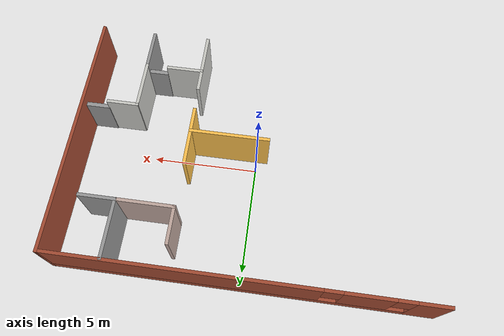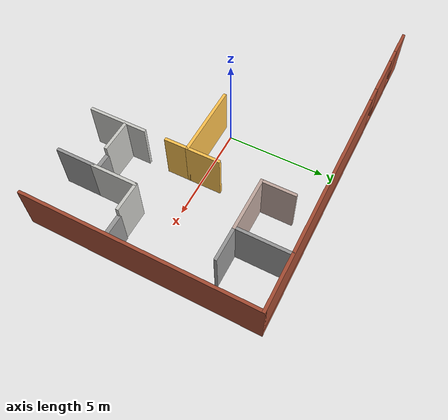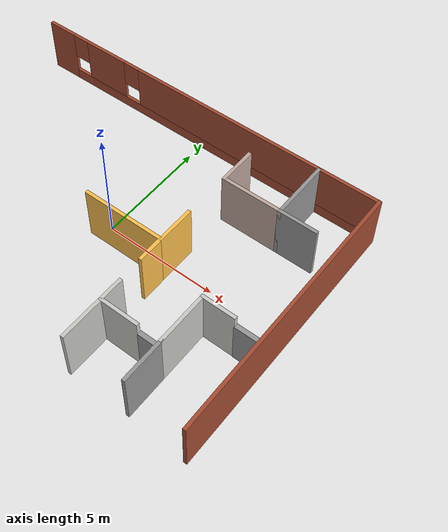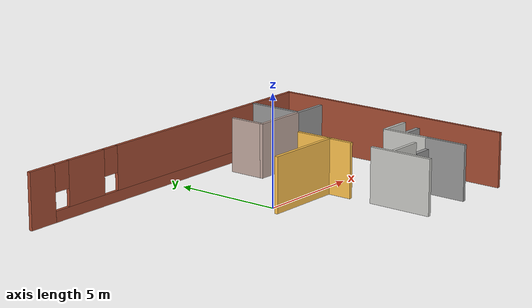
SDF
<sdf version="1.6">
 <model name="Office_Udacity">
  <link name="Door_5">
   <pose>5.34472 -3.85243 0 0 -0 0</pose>
   <visual name="Door_5_Visual">
    <pose>0 0 1 0 -0 0</pose>
    <geometry><box><size>0.959661 0.2 2</size></box></geometry>
    <material>
     <script><uri>file://media/materials/scripts/gazebo.material</uri><name>Gazebo/Grey</name></script>
     <shader type="pixel"/>
    </material>
   </visual>
   <collision name="Door_5_Collision">
    <pose>0 0 1 0 -0 0</pose>
    <geometry><box><size>0.959661 0.2 2</size></box></geometry>
    <surface>
     <friction>
      <ode><mu>1</mu><mu2>1</mu2><fdir1>0 0 0</fdir1><slip1>0</slip1><slip2>0</slip2></ode>
      <torsional>
       <coefficient>1</coefficient>
       <patch_radius>0</patch_radius>
       <surface_radius>0</surface_radius>
       <use_patch_radius>1</use_patch_radius>
       <ode><slip>0</slip></ode>
      </torsional>
     </friction>
     <bounce><restitution_coefficient>0</restitution_coefficient><threshold>1e+06</threshold></bounce>
     <contact>
      <collide_without_contact>0</collide_without_contact>
      <collide_without_contact_bitmask>1</collide_without_contact_bitmask>
      <collide_bitmask>1</collide_bitmask>
      <ode>
       <soft_cfm>0</soft_cfm>
       <soft_erp>0.2</soft_erp>
       <kp>1e+13</kp>
       <kd>1</kd>
       <max_vel>0.01</max_vel>
       <min_depth>0</min_depth>
      </ode>
      <bullet>
       <split_impulse>1</split_impulse>
       <split_impulse_penetration_threshold>-0.01</split_impulse_penetration_threshold>
       <soft_cfm>0</soft_cfm>
       <soft_erp>0.2</soft_erp>
       <kp>1e+13</kp>
       <kd>1</kd>
      </bullet>
     </contact>
    </surface>
   </collision>
  </link>
  <link name="Door_6">
   <pose>7.84609 -1.59543 0 0 -0 0</pose>
   <visual name="Door_6_Visual">
    <pose>0 0 1 0 -0 0</pose>
    <geometry><box><size>1.1287 0.2 2</size></box></geometry>
    <material>
     <script><uri>file://media/materials/scripts/gazebo.material</uri><name>Gazebo/Grey</name></script>
     <shader type="pixel"/>
    </material>
   </visual>
   <collision name="Door_6_Collision">
    <pose>0 0 1 0 -0 0</pose>
    <geometry><box><size>1.1287 0.2 2</size></box></geometry>
    <surface>
     <friction>
      <ode><mu>1</mu><mu2>1</mu2><fdir1>0 0 0</fdir1><slip1>0</slip1><slip2>0</slip2></ode>
      <torsional>
       <coefficient>1</coefficient>
       <patch_radius>0</patch_radius>
       <surface_radius>0</surface_radius>
       <use_patch_radius>1</use_patch_radius>
       <ode><slip>0</slip></ode>
      </torsional>
     </friction>
     <bounce><restitution_coefficient>0</restitution_coefficient><threshold>1e+06</threshold></bounce>
     <contact>
      <collide_without_contact>0</collide_without_contact>
      <collide_without_contact_bitmask>1</collide_without_contact_bitmask>
      <collide_bitmask>1</collide_bitmask>
      <ode>
       <soft_cfm>0</soft_cfm>
       <soft_erp>0.2</soft_erp>
       <kp>1e+13</kp>
       <kd>1</kd>
       <max_vel>0.01</max_vel>
       <min_depth>0</min_depth>
      </ode>
      <bullet>
       <split_impulse>1</split_impulse>
       <split_impulse_penetration_threshold>-0.01</split_impulse_penetration_threshold>
       <soft_cfm>0</soft_cfm>
       <soft_erp>0.2</soft_erp>
       <kp>1e+13</kp>
       <kd>1</kd>
      </bullet>
     </contact>
    </surface>
   </collision>
  </link>
  <link name="Wall_3">
   <pose>0.009 5.8 0 0 -0 0</pose>
   <visual name="Wall_3_Visual_0">
    <pose>-7.84891 0 1.25 0 -0 0</pose>
    <geometry><box><size>1.40738 0.15 2.5</size></box></geometry>
    <material>
     <script><uri>file://media/materials/scripts/gazebo.material</uri><name>Gazebo/Bricks</name></script>
     <ambient>1 1 1 1</ambient>
     <shader type="pixel"/>
    </material>
    <meta><layer>0</layer></meta>
   </visual>
   <visual name="Wall_3_Visual_1">
    <pose>0.703691 0 0.25 0 -0 0</pose>
    <geometry><box><size>15.6978 0.15 0.5</size></box></geometry>
    <material>
     <script><uri>file://media/materials/scripts/gazebo.material</uri><name>Gazebo/Bricks</name></script>
     <ambient>1 1 1 1</ambient>
     <shader type="pixel"/>
    </material>
    <meta><layer>0</layer></meta>
   </visual>
   <visual name="Wall_3_Visual_2">
    <pose>-5.2807 0 1.5 0 -0 0</pose>
    <geometry><box><size>2.12904 0.15 2</size></box></geometry>
    <material>
     <script><uri>file://media/materials/scripts/gazebo.material</uri><name>Gazebo/Bricks</name></script>
     <ambient>1 1 1 1</ambient>
     <shader type="pixel"/>
    </material>
    <meta><layer>0</layer></meta>
   </visual>
   <visual name="Wall_3_Visual_3">
    <pose>2.56821 0 1.5 0 -0 0</pose>
    <geometry><box><size>11.9688 0.15 2</size></box></geometry>
    <material>
     <script><uri>file://media/materials/scripts/gazebo.material</uri><name>Gazebo/Bricks</name></script>
     <ambient>1 1 1 1</ambient>
     <shader type="pixel"/>
    </material>
    <meta><layer>0</layer></meta>
   </visual>
   <visual name="Wall_3_Visual_4">
    <pose>-6.74522 0 1.9 0 -0 0</pose>
    <geometry><box><size>0.8 0.15 1.2</size></box></geometry>
    <material>
     <script><uri>file://media/materials/scripts/gazebo.material</uri><name>Gazebo/Bricks</name></script>
     <ambient>1 1 1 1</ambient>
     <shader type="pixel"/>
    </material>
    <meta><layer>0</layer></meta>
   </visual>
   <visual name="Wall_3_Visual_5">
    <pose>-3.81618 0 1.9 0 -0 0</pose>
    <geometry><box><size>0.8 0.15 1.2</size></box></geometry>
    <material>
     <script><uri>file://media/materials/scripts/gazebo.material</uri><name>Gazebo/Bricks</name></script>
     <ambient>1 1 1 1</ambient>
     <shader type="pixel"/>
    </material>
    <meta><layer>0</layer></meta>
   </visual>
   <collision name="Wall_3_Collision_0">
    <pose>-7.84891 0 1.25 0 -0 0</pose>
    <geometry><box><size>1.40738 0.15 2.5</size></box></geometry>
    <surface>
     <friction>
      <ode><mu>1</mu><mu2>1</mu2><fdir1>0 0 0</fdir1><slip1>0</slip1><slip2>0</slip2></ode>
      <torsional>
       <coefficient>1</coefficient>
       <patch_radius>0</patch_radius>
       <surface_radius>0</surface_radius>
       <use_patch_radius>1</use_patch_radius>
       <ode><slip>0</slip></ode>
      </torsional>
     </friction>
     <bounce><restitution_coefficient>0</restitution_coefficient><threshold>1e+06</threshold></bounce>
     <contact>
      <collide_without_contact>0</collide_without_contact>
      <collide_without_contact_bitmask>1</collide_without_contact_bitmask>
      <collide_bitmask>1</collide_bitmask>
      <ode>
       <soft_cfm>0</soft_cfm>
       <soft_erp>0.2</soft_erp>
       <kp>1e+13</kp>
       <kd>1</kd>
       <max_vel>0.01</max_vel>
       <min_depth>0</min_depth>
      </ode>
      <bullet>
       <split_impulse>1</split_impulse>
       <split_impulse_penetration_threshold>-0.01</split_impulse_penetration_threshold>
       <soft_cfm>0</soft_cfm>
       <soft_erp>0.2</soft_erp>
       <kp>1e+13</kp>
       <kd>1</kd>
      </bullet>
     </contact>
    </surface>
   </collision>
   <collision name="Wall_3_Collision_1">
    <pose>0.703691 0 0.25 0 -0 0</pose>
    <geometry><box><size>15.6978 0.15 0.5</size></box></geometry>
    <surface>
     <friction>
      <ode><mu>1</mu><mu2>1</mu2><fdir1>0 0 0</fdir1><slip1>0</slip1><slip2>0</slip2></ode>
      <torsional>
       <coefficient>1</coefficient>
       <patch_radius>0</patch_radius>
       <surface_radius>0</surface_radius>
       <use_patch_radius>1</use_patch_radius>
       <ode><slip>0</slip></ode>
      </torsional>
     </friction>
     <bounce><restitution_coefficient>0</restitution_coefficient><threshold>1e+06</threshold></bounce>
     <contact>
      <collide_without_contact>0</collide_without_contact>
      <collide_without_contact_bitmask>1</collide_without_contact_bitmask>
      <collide_bitmask>1</collide_bitmask>
      <ode>
       <soft_cfm>0</soft_cfm>
       <soft_erp>0.2</soft_erp>
       <kp>1e+13</kp>
       <kd>1</kd>
       <max_vel>0.01</max_vel>
       <min_depth>0</min_depth>
      </ode>
      <bullet>
       <split_impulse>1</split_impulse>
       <split_impulse_penetration_threshold>-0.01</split_impulse_penetration_threshold>
       <soft_cfm>0</soft_cfm>
       <soft_erp>0.2</soft_erp>
       <kp>1e+13</kp>
       <kd>1</kd>
      </bullet>
     </contact>
    </surface>
   </collision>
   <collision name="Wall_3_Collision_2">
    <pose>-5.2807 0 1.5 0 -0 0</pose>
    <geometry><box><size>2.12904 0.15 2</size></box></geometry>
    <surface>
     <friction>
      <ode><mu>1</mu><mu2>1</mu2><fdir1>0 0 0</fdir1><slip1>0</slip1><slip2>0</slip2></ode>
      <torsional>
       <coefficient>1</coefficient>
       <patch_radius>0</patch_radius>
       <surface_radius>0</surface_radius>
       <use_patch_radius>1</use_patch_radius>
       <ode><slip>0</slip></ode>
      </torsional>
     </friction>
     <bounce><restitution_coefficient>0</restitution_coefficient><threshold>1e+06</threshold></bounce>
     <contact>
      <collide_without_contact>0</collide_without_contact>
      <collide_without_contact_bitmask>1</collide_without_contact_bitmask>
      <collide_bitmask>1</collide_bitmask>
      <ode>
       <soft_cfm>0</soft_cfm>
       <soft_erp>0.2</soft_erp>
       <kp>1e+13</kp>
       <kd>1</kd>
       <max_vel>0.01</max_vel>
       <min_depth>0</min_depth>
      </ode>
      <bullet>
       <split_impulse>1</split_impulse>
       <split_impulse_penetration_threshold>-0.01</split_impulse_penetration_threshold>
       <soft_cfm>0</soft_cfm>
       <soft_erp>0.2</soft_erp>
       <kp>1e+13</kp>
       <kd>1</kd>
      </bullet>
     </contact>
    </surface>
   </collision>
   <collision name="Wall_3_Collision_3">
    <pose>2.56821 0 1.5 0 -0 0</pose>
    <geometry><box><size>11.9688 0.15 2</size></box></geometry>
    <surface>
     <friction>
      <ode><mu>1</mu><mu2>1</mu2><fdir1>0 0 0</fdir1><slip1>0</slip1><slip2>0</slip2></ode>
      <torsional>
       <coefficient>1</coefficient>
       <patch_radius>0</patch_radius>
       <surface_radius>0</surface_radius>
       <use_patch_radius>1</use_patch_radius>
       <ode><slip>0</slip></ode>
      </torsional>
     </friction>
     <bounce><restitution_coefficient>0</restitution_coefficient><threshold>1e+06</threshold></bounce>
     <contact>
      <collide_without_contact>0</collide_without_contact>
      <collide_without_contact_bitmask>1</collide_without_contact_bitmask>
      <collide_bitmask>1</collide_bitmask>
      <ode>
       <soft_cfm>0</soft_cfm>
       <soft_erp>0.2</soft_erp>
       <kp>1e+13</kp>
       <kd>1</kd>
       <max_vel>0.01</max_vel>
       <min_depth>0</min_depth>
      </ode>
      <bullet>
       <split_impulse>1</split_impulse>
       <split_impulse_penetration_threshold>-0.01</split_impulse_penetration_threshold>
       <soft_cfm>0</soft_cfm>
       <soft_erp>0.2</soft_erp>
       <kp>1e+13</kp>
       <kd>1</kd>
      </bullet>
     </contact>
    </surface>
   </collision>
   <collision name="Wall_3_Collision_4">
    <pose>-6.74522 0 1.9 0 -0 0</pose>
    <geometry><box><size>0.8 0.15 1.2</size></box></geometry>
    <surface>
     <friction>
      <ode><mu>1</mu><mu2>1</mu2><fdir1>0 0 0</fdir1><slip1>0</slip1><slip2>0</slip2></ode>
      <torsional>
       <coefficient>1</coefficient>
       <patch_radius>0</patch_radius>
       <surface_radius>0</surface_radius>
       <use_patch_radius>1</use_patch_radius>
       <ode><slip>0</slip></ode>
      </torsional>
     </friction>
     <bounce><restitution_coefficient>0</restitution_coefficient><threshold>1e+06</threshold></bounce>
     <contact>
      <collide_without_contact>0</collide_without_contact>
      <collide_without_contact_bitmask>1</collide_without_contact_bitmask>
      <collide_bitmask>1</collide_bitmask>
      <ode>
       <soft_cfm>0</soft_cfm>
       <soft_erp>0.2</soft_erp>
       <kp>1e+13</kp>
       <kd>1</kd>
       <max_vel>0.01</max_vel>
       <min_depth>0</min_depth>
      </ode>
      <bullet>
       <split_impulse>1</split_impulse>
       <split_impulse_penetration_threshold>-0.01</split_impulse_penetration_threshold>
       <soft_cfm>0</soft_cfm>
       <soft_erp>0.2</soft_erp>
       <kp>1e+13</kp>
       <kd>1</kd>
      </bullet>
     </contact>
    </surface>
   </collision>
   <collision name="Wall_3_Collision_5">
    <pose>-3.81618 0 1.9 0 -0 0</pose>
    <geometry><box><size>0.8 0.15 1.2</size></box></geometry>
    <surface>
     <friction>
      <ode><mu>1</mu><mu2>1</mu2><fdir1>0 0 0</fdir1><slip1>0</slip1><slip2>0</slip2></ode>
      <torsional>
       <coefficient>1</coefficient>
       <patch_radius>0</patch_radius>
       <surface_radius>0</surface_radius>
       <use_patch_radius>1</use_patch_radius>
       <ode><slip>0</slip></ode>
      </torsional>
     </friction>
     <bounce><restitution_coefficient>0</restitution_coefficient><threshold>1e+06</threshold></bounce>
     <contact>
      <collide_without_contact>0</collide_without_contact>
      <collide_without_contact_bitmask>1</collide_without_contact_bitmask>
      <collide_bitmask>1</collide_bitmask>
      <ode>
       <soft_cfm>0</soft_cfm>
       <soft_erp>0.2</soft_erp>
       <kp>1e+13</kp>
       <kd>1</kd>
       <max_vel>0.01</max_vel>
       <min_depth>0</min_depth>
      </ode>
      <bullet>
       <split_impulse>1</split_impulse>
       <split_impulse_penetration_threshold>-0.01</split_impulse_penetration_threshold>
       <soft_cfm>0</soft_cfm>
       <soft_erp>0.2</soft_erp>
       <kp>1e+13</kp>
       <kd>1</kd>
      </bullet>
     </contact>
    </surface>
   </collision>
  </link>
  <link name="Wall_36">
   <pose>5.86992 -4.76879 0 0 -0 1.5708</pose>
   <visual name="Wall_36_Visual">
    <pose>0 0 1.25 0 -0 0</pose>
    <geometry><box><size>2 0.15 2.5</size></box></geometry>
    <material>
     <script><uri>file://media/materials/scripts/gazebo.material</uri><name>Gazebo/Grey</name></script>
     <ambient>1 1 1 1</ambient>
     <shader type="pixel"/>
    </material>
    <meta><layer>0</layer></meta>
   </visual>
   <collision name="Wall_36_Collision">
    <pose>0 0 1.25 0 -0 0</pose>
    <geometry><box><size>2 0.15 2.5</size></box></geometry>
    <surface>
     <friction>
      <ode><mu>1</mu><mu2>1</mu2><fdir1>0 0 0</fdir1><slip1>0</slip1><slip2>0</slip2></ode>
      <torsional>
       <coefficient>1</coefficient>
       <patch_radius>0</patch_radius>
       <surface_radius>0</surface_radius>
       <use_patch_radius>1</use_patch_radius>
       <ode><slip>0</slip></ode>
      </torsional>
     </friction>
     <bounce><restitution_coefficient>0</restitution_coefficient><threshold>1e+06</threshold></bounce>
     <contact>
      <collide_without_contact>0</collide_without_contact>
      <collide_without_contact_bitmask>1</collide_without_contact_bitmask>
      <collide_bitmask>1</collide_bitmask>
      <ode>
       <soft_cfm>0</soft_cfm>
       <soft_erp>0.2</soft_erp>
       <kp>1e+13</kp>
       <kd>1</kd>
       <max_vel>0.01</max_vel>
       <min_depth>0</min_depth>
      </ode>
      <bullet>
       <split_impulse>1</split_impulse>
       <split_impulse_penetration_threshold>-0.01</split_impulse_penetration_threshold>
       <soft_cfm>0</soft_cfm>
       <soft_erp>0.2</soft_erp>
       <kp>1e+13</kp>
       <kd>1</kd>
      </bullet>
     </contact>
    </surface>
   </collision>
  </link>
  <link name="Wall_42">
   <pose>1.34487 -0.590852 0 0 -0 0</pose>
   <visual name="Wall_42_Visual">
    <pose>0 0 1.25 0 -0 0</pose>
    <geometry><box><size>3.75 0.15 2.5</size></box></geometry>
    <material>
     <script><uri>file://media/materials/scripts/gazebo.material</uri><name>Gazebo/Grey</name></script>
     <ambient>1 0.764706 0.305882 1</ambient>
     <shader type="pixel"/>
    </material>
    <meta><layer>0</layer></meta>
   </visual>
   <collision name="Wall_42_Collision">
    <pose>0 0 1.25 0 -0 0</pose>
    <geometry><box><size>3.75 0.15 2.5</size></box></geometry>
    <surface>
     <friction>
      <ode><mu>1</mu><mu2>1</mu2><fdir1>0 0 0</fdir1><slip1>0</slip1><slip2>0</slip2></ode>
      <torsional>
       <coefficient>1</coefficient>
       <patch_radius>0</patch_radius>
       <surface_radius>0</surface_radius>
       <use_patch_radius>1</use_patch_radius>
       <ode><slip>0</slip></ode>
      </torsional>
     </friction>
     <bounce><restitution_coefficient>0</restitution_coefficient><threshold>1e+06</threshold></bounce>
     <contact>
      <collide_without_contact>0</collide_without_contact>
      <collide_without_contact_bitmask>1</collide_without_contact_bitmask>
      <collide_bitmask>1</collide_bitmask>
      <ode>
       <soft_cfm>0</soft_cfm>
       <soft_erp>0.2</soft_erp>
       <kp>1e+13</kp>
       <kd>1</kd>
       <max_vel>0.01</max_vel>
       <min_depth>0</min_depth>
      </ode>
      <bullet>
       <split_impulse>1</split_impulse>
       <split_impulse_penetration_threshold>-0.01</split_impulse_penetration_threshold>
       <soft_cfm>0</soft_cfm>
       <soft_erp>0.2</soft_erp>
       <kp>1e+13</kp>
       <kd>1</kd>
      </bullet>
     </contact>
    </surface>
   </collision>
  </link>
  <link name="Wall_43">
   <pose>3.14487 -1.14085 0 0 0 -1.5708</pose>
   <visual name="Wall_43_Visual">
    <pose>0 0 1.25 0 -0 0</pose>
    <geometry><box><size>1.25 0.15 2.5</size></box></geometry>
    <material>
     <script><uri>file://media/materials/scripts/gazebo.material</uri><name>Gazebo/Grey</name></script>
     <ambient>1 0.764706 0.305882 1</ambient>
     <shader type="pixel"/>
    </material>
    <meta><layer>0</layer></meta>
   </visual>
   <collision name="Wall_43_Collision">
    <pose>0 0 1.25 0 -0 0</pose>
    <geometry><box><size>1.25 0.15 2.5</size></box></geometry>
    <surface>
     <friction>
      <ode><mu>1</mu><mu2>1</mu2><fdir1>0 0 0</fdir1><slip1>0</slip1><slip2>0</slip2></ode>
      <torsional>
       <coefficient>1</coefficient>
       <patch_radius>0</patch_radius>
       <surface_radius>0</surface_radius>
       <use_patch_radius>1</use_patch_radius>
       <ode><slip>0</slip></ode>
      </torsional>
     </friction>
     <bounce><restitution_coefficient>0</restitution_coefficient><threshold>1e+06</threshold></bounce>
     <contact>
      <collide_without_contact>0</collide_without_contact>
      <collide_without_contact_bitmask>1</collide_without_contact_bitmask>
      <collide_bitmask>1</collide_bitmask>
      <ode>
       <soft_cfm>0</soft_cfm>
       <soft_erp>0.2</soft_erp>
       <kp>1e+13</kp>
       <kd>1</kd>
       <max_vel>0.01</max_vel>
       <min_depth>0</min_depth>
      </ode>
      <bullet>
       <split_impulse>1</split_impulse>
       <split_impulse_penetration_threshold>-0.01</split_impulse_penetration_threshold>
       <soft_cfm>0</soft_cfm>
       <soft_erp>0.2</soft_erp>
       <kp>1e+13</kp>
       <kd>1</kd>
      </bullet>
     </contact>
    </surface>
   </collision>
  </link>
  <link name="Wall_47">
   <pose>3.17852 -4.30533 0 0 0 -1.5708</pose>
   <visual name="Wall_47_Visual">
    <pose>0 0 1.25 0 -0 0</pose>
    <geometry><box><size>3 0.15 2.5</size></box></geometry>
    <material>
     <script><uri>file://media/materials/scripts/gazebo.material</uri><name>Gazebo/CeilingTiled</name></script>
     <ambient>1 1 1 1</ambient>
     <shader type="pixel"/>
    </material>
    <meta><layer>0</layer></meta>
   </visual>
   <collision name="Wall_47_Collision">
    <pose>0 0 1.25 0 -0 0</pose>
    <geometry><box><size>3 0.15 2.5</size></box></geometry>
    <surface>
     <friction>
      <ode><mu>1</mu><mu2>1</mu2><fdir1>0 0 0</fdir1><slip1>0</slip1><slip2>0</slip2></ode>
      <torsional>
       <coefficient>1</coefficient>
       <patch_radius>0</patch_radius>
       <surface_radius>0</surface_radius>
       <use_patch_radius>1</use_patch_radius>
       <ode><slip>0</slip></ode>
      </torsional>
     </friction>
     <bounce><restitution_coefficient>0</restitution_coefficient><threshold>1e+06</threshold></bounce>
     <contact>
      <collide_without_contact>0</collide_without_contact>
      <collide_without_contact_bitmask>1</collide_without_contact_bitmask>
      <collide_bitmask>1</collide_bitmask>
      <ode>
       <soft_cfm>0</soft_cfm>
       <soft_erp>0.2</soft_erp>
       <kp>1e+13</kp>
       <kd>1</kd>
       <max_vel>0.01</max_vel>
       <min_depth>0</min_depth>
      </ode>
      <bullet>
       <split_impulse>1</split_impulse>
       <split_impulse_penetration_threshold>-0.01</split_impulse_penetration_threshold>
       <soft_cfm>0</soft_cfm>
       <soft_erp>0.2</soft_erp>
       <kp>1e+13</kp>
       <kd>1</kd>
      </bullet>
     </contact>
    </surface>
   </collision>
  </link>
  <link name="Wall_49">
   <pose>3.99878 -3.86168 0 0 -0 0</pose>
   <visual name="Wall_49_Visual">
    <pose>0 0 1.25 0 -0 0</pose>
    <geometry><box><size>1.75 0.15 2.5</size></box></geometry>
    <material>
     <script><uri>file://media/materials/scripts/gazebo.material</uri><name>Gazebo/CeilingTiled</name></script>
     <ambient>1 1 1 1</ambient>
     <shader type="pixel"/>
    </material>
    <meta><layer>0</layer></meta>
   </visual>
   <collision name="Wall_49_Collision">
    <pose>0 0 1.25 0 -0 0</pose>
    <geometry><box><size>1.75 0.15 2.5</size></box></geometry>
    <surface>
     <friction>
      <ode><mu>1</mu><mu2>1</mu2><fdir1>0 0 0</fdir1><slip1>0</slip1><slip2>0</slip2></ode>
      <torsional>
       <coefficient>1</coefficient>
       <patch_radius>0</patch_radius>
       <surface_radius>0</surface_radius>
       <use_patch_radius>1</use_patch_radius>
       <ode><slip>0</slip></ode>
      </torsional>
     </friction>
     <bounce><restitution_coefficient>0</restitution_coefficient><threshold>1e+06</threshold></bounce>
     <contact>
      <collide_without_contact>0</collide_without_contact>
      <collide_without_contact_bitmask>1</collide_without_contact_bitmask>
      <collide_bitmask>1</collide_bitmask>
      <ode>
       <soft_cfm>0</soft_cfm>
       <soft_erp>0.2</soft_erp>
       <kp>1e+13</kp>
       <kd>1</kd>
       <max_vel>0.01</max_vel>
       <min_depth>0</min_depth>
      </ode>
      <bullet>
       <split_impulse>1</split_impulse>
       <split_impulse_penetration_threshold>-0.01</split_impulse_penetration_threshold>
       <soft_cfm>0</soft_cfm>
       <soft_erp>0.2</soft_erp>
       <kp>1e+13</kp>
       <kd>1</kd>
      </bullet>
     </contact>
    </surface>
   </collision>
  </link>
  <link name="Wall_53">
   <pose>5.86992 -2.7374 0 0 -0 1.5708</pose>
   <visual name="Wall_53_Visual">
    <pose>0 0 1.25 0 -0 0</pose>
    <geometry><box><size>2.36278 0.15 2.5</size></box></geometry>
    <material>
     <script><uri>file://media/materials/scripts/gazebo.material</uri><name>Gazebo/CeilingTiled</name></script>
     <ambient>1 1 1 1</ambient>
     <shader type="pixel"/>
    </material>
    <meta><layer>0</layer></meta>
   </visual>
   <collision name="Wall_53_Collision">
    <pose>0 0 1.25 0 -0 0</pose>
    <geometry><box><size>2.36278 0.15 2.5</size></box></geometry>
    <surface>
     <friction>
      <ode><mu>1</mu><mu2>1</mu2><fdir1>0 0 0</fdir1><slip1>0</slip1><slip2>0</slip2></ode>
      <torsional>
       <coefficient>1</coefficient>
       <patch_radius>0</patch_radius>
       <surface_radius>0</surface_radius>
       <use_patch_radius>1</use_patch_radius>
       <ode><slip>0</slip></ode>
      </torsional>
     </friction>
     <bounce><restitution_coefficient>0</restitution_coefficient><threshold>1e+06</threshold></bounce>
     <contact>
      <collide_without_contact>0</collide_without_contact>
      <collide_without_contact_bitmask>1</collide_without_contact_bitmask>
      <collide_bitmask>1</collide_bitmask>
      <ode>
       <soft_cfm>0</soft_cfm>
       <soft_erp>0.2</soft_erp>
       <kp>1e+13</kp>
       <kd>1</kd>
       <max_vel>0.01</max_vel>
       <min_depth>0</min_depth>
      </ode>
      <bullet>
       <split_impulse>1</split_impulse>
       <split_impulse_penetration_threshold>-0.01</split_impulse_penetration_threshold>
       <soft_cfm>0</soft_cfm>
       <soft_erp>0.2</soft_erp>
       <kp>1e+13</kp>
       <kd>1</kd>
      </bullet>
     </contact>
    </surface>
   </collision>
  </link>
  <link name="Wall_54">
   <pose>6.56779 -1.60814 0 0 -0 0</pose>
   <visual name="Wall_54_Visual">
    <pose>0 0 1.25 0 -0 0</pose>
    <geometry><box><size>1.5 0.15 2.5</size></box></geometry>
    <material>
     <script><uri>file://media/materials/scripts/gazebo.material</uri><name>Gazebo/CeilingTiled</name></script>
     <ambient>1 1 1 1</ambient>
     <shader type="pixel"/>
    </material>
    <meta><layer>0</layer></meta>
   </visual>
   <collision name="Wall_54_Collision">
    <pose>0 0 1.25 0 -0 0</pose>
    <geometry><box><size>1.5 0.15 2.5</size></box></geometry>
    <surface>
     <friction>
      <ode><mu>1</mu><mu2>1</mu2><fdir1>0 0 0</fdir1><slip1>0</slip1><slip2>0</slip2></ode>
      <torsional>
       <coefficient>1</coefficient>
       <patch_radius>0</patch_radius>
       <surface_radius>0</surface_radius>
       <use_patch_radius>1</use_patch_radius>
       <ode><slip>0</slip></ode>
      </torsional>
     </friction>
     <bounce><restitution_coefficient>0</restitution_coefficient><threshold>1e+06</threshold></bounce>
     <contact>
      <collide_without_contact>0</collide_without_contact>
      <collide_without_contact_bitmask>1</collide_without_contact_bitmask>
      <collide_bitmask>1</collide_bitmask>
      <ode>
       <soft_cfm>0</soft_cfm>
       <soft_erp>0.2</soft_erp>
       <kp>1e+13</kp>
       <kd>1</kd>
       <max_vel>0.01</max_vel>
       <min_depth>0</min_depth>
      </ode>
      <bullet>
       <split_impulse>1</split_impulse>
       <split_impulse_penetration_threshold>-0.01</split_impulse_penetration_threshold>
       <soft_cfm>0</soft_cfm>
       <soft_erp>0.2</soft_erp>
       <kp>1e+13</kp>
       <kd>1</kd>
      </bullet>
     </contact>
    </surface>
   </collision>
  </link>
  <link name="Wall_56">
   <pose>8.4866 0 0 0 0 -1.5708</pose>
   <visual name="Wall_56_Visual">
    <pose>0 0 1.25 0 -0 0</pose>
    <geometry><box><size>11.75 0.15 2.5</size></box></geometry>
    <material>
     <script><uri>file://media/materials/scripts/gazebo.material</uri><name>Gazebo/Bricks</name></script>
     <ambient>1 1 1 1</ambient>
     <shader type="pixel"/>
    </material>
    <meta><layer>0</layer></meta>
   </visual>
   <collision name="Wall_56_Collision">
    <pose>0 0 1.25 0 -0 0</pose>
    <geometry><box><size>11.75 0.15 2.5</size></box></geometry>
    <surface>
     <friction>
      <ode><mu>1</mu><mu2>1</mu2><fdir1>0 0 0</fdir1><slip1>0</slip1><slip2>0</slip2></ode>
      <torsional>
       <coefficient>1</coefficient>
       <patch_radius>0</patch_radius>
       <surface_radius>0</surface_radius>
       <use_patch_radius>1</use_patch_radius>
       <ode><slip>0</slip></ode>
      </torsional>
     </friction>
     <bounce><restitution_coefficient>0</restitution_coefficient><threshold>1e+06</threshold></bounce>
     <contact>
      <collide_without_contact>0</collide_without_contact>
      <collide_without_contact_bitmask>1</collide_without_contact_bitmask>
      <collide_bitmask>1</collide_bitmask>
      <ode>
       <soft_cfm>0</soft_cfm>
       <soft_erp>0.2</soft_erp>
       <kp>1e+13</kp>
       <kd>1</kd>
       <max_vel>0.01</max_vel>
       <min_depth>0</min_depth>
      </ode>
      <bullet>
       <split_impulse>1</split_impulse>
       <split_impulse_penetration_threshold>-0.01</split_impulse_penetration_threshold>
       <soft_cfm>0</soft_cfm>
       <soft_erp>0.2</soft_erp>
       <kp>1e+13</kp>
       <kd>1</kd>
      </bullet>
     </contact>
    </surface>
   </collision>
  </link>
  <link name="Wall_58">
   <pose>3.14487 0.209147 0 0 -0 1.5708</pose>
   <visual name="Wall_58_Visual">
    <pose>0 0 1.25 0 -0 0</pose>
    <geometry><box><size>1.75 0.15 2.5</size></box></geometry>
    <material>
     <script><uri>file://media/materials/scripts/gazebo.material</uri><name>Gazebo/Grey</name></script>
     <ambient>1 0.764706 0.305882 1</ambient>
     <shader type="pixel"/>
    </material>
    <meta><layer>0</layer></meta>
   </visual>
   <collision name="Wall_58_Collision">
    <pose>0 0 1.25 0 -0 0</pose>
    <geometry><box><size>1.75 0.15 2.5</size></box></geometry>
    <surface>
     <friction>
      <ode><mu>1</mu><mu2>1</mu2><fdir1>0 0 0</fdir1><slip1>0</slip1><slip2>0</slip2></ode>
      <torsional>
       <coefficient>1</coefficient>
       <patch_radius>0</patch_radius>
       <surface_radius>0</surface_radius>
       <use_patch_radius>1</use_patch_radius>
       <ode><slip>0</slip></ode>
      </torsional>
     </friction>
     <bounce><restitution_coefficient>0</restitution_coefficient><threshold>1e+06</threshold></bounce>
     <contact>
      <collide_without_contact>0</collide_without_contact>
      <collide_without_contact_bitmask>1</collide_without_contact_bitmask>
      <collide_bitmask>1</collide_bitmask>
      <ode>
       <soft_cfm>0</soft_cfm>
       <soft_erp>0.2</soft_erp>
       <kp>1e+13</kp>
       <kd>1</kd>
       <max_vel>0.01</max_vel>
       <min_depth>0</min_depth>
      </ode>
      <bullet>
       <split_impulse>1</split_impulse>
       <split_impulse_penetration_threshold>-0.01</split_impulse_penetration_threshold>
       <soft_cfm>0</soft_cfm>
       <soft_erp>0.2</soft_erp>
       <kp>1e+13</kp>
       <kd>1</kd>
      </bullet>
     </contact>
    </surface>
   </collision>
  </link>
  <link name="Wall_67">
   <pose>3.1922 3.95525 0 0 0 -1.5708</pose>
   <visual name="Wall_67_Visual">
    <pose>0 0 1.25 0 -0 0</pose>
    <geometry><box><size>1.75 0.15 2.5</size></box></geometry>
    <material>
     <script><uri>file://media/materials/scripts/gazebo.material</uri><name>Gazebo/Grey</name></script>
     <ambient>0.760784 0.662745 0.627451 1</ambient>
     <shader type="pixel"/>
    </material>
    <meta><layer>0</layer></meta>
   </visual>
   <collision name="Wall_67_Collision">
    <pose>0 0 1.25 0 -0 0</pose>
    <geometry><box><size>1.75 0.15 2.5</size></box></geometry>
    <surface>
     <friction>
      <ode><mu>1</mu><mu2>1</mu2><fdir1>0 0 0</fdir1><slip1>0</slip1><slip2>0</slip2></ode>
      <torsional>
       <coefficient>1</coefficient>
       <patch_radius>0</patch_radius>
       <surface_radius>0</surface_radius>
       <use_patch_radius>1</use_patch_radius>
       <ode><slip>0</slip></ode>
      </torsional>
     </friction>
     <bounce><restitution_coefficient>0</restitution_coefficient><threshold>1e+06</threshold></bounce>
     <contact>
      <collide_without_contact>0</collide_without_contact>
      <collide_without_contact_bitmask>1</collide_without_contact_bitmask>
      <collide_bitmask>1</collide_bitmask>
      <ode>
       <soft_cfm>0</soft_cfm>
       <soft_erp>0.2</soft_erp>
       <kp>1e+13</kp>
       <kd>1</kd>
       <max_vel>0.01</max_vel>
       <min_depth>0</min_depth>
      </ode>
      <bullet>
       <split_impulse>1</split_impulse>
       <split_impulse_penetration_threshold>-0.01</split_impulse_penetration_threshold>
       <soft_cfm>0</soft_cfm>
       <soft_erp>0.2</soft_erp>
       <kp>1e+13</kp>
       <kd>1</kd>
      </bullet>
     </contact>
    </surface>
   </collision>
  </link>
  <link name="Wall_68">
   <pose>4.49219 3.15524 0 0 -0 0</pose>
   <visual name="Wall_68_Visual">
    <pose>0 0 1.25 0 -0 0</pose>
    <geometry><box><size>2.75 0.15 2.5</size></box></geometry>
    <material>
     <script><uri>file://media/materials/scripts/gazebo.material</uri><name>Gazebo/Grey</name></script>
     <ambient>0.760784 0.662745 0.627451 1</ambient>
     <shader type="pixel"/>
    </material>
    <meta><layer>0</layer></meta>
   </visual>
   <collision name="Wall_68_Collision">
    <pose>0 0 1.25 0 -0 0</pose>
    <geometry><box><size>2.75 0.15 2.5</size></box></geometry>
    <surface>
     <friction>
      <ode><mu>1</mu><mu2>1</mu2><fdir1>0 0 0</fdir1><slip1>0</slip1><slip2>0</slip2></ode>
      <torsional>
       <coefficient>1</coefficient>
       <patch_radius>0</patch_radius>
       <surface_radius>0</surface_radius>
       <use_patch_radius>1</use_patch_radius>
       <ode><slip>0</slip></ode>
      </torsional>
     </friction>
     <bounce><restitution_coefficient>0</restitution_coefficient><threshold>1e+06</threshold></bounce>
     <contact>
      <collide_without_contact>0</collide_without_contact>
      <collide_without_contact_bitmask>1</collide_without_contact_bitmask>
      <collide_bitmask>1</collide_bitmask>
      <ode>
       <soft_cfm>0</soft_cfm>
       <soft_erp>0.2</soft_erp>
       <kp>1e+13</kp>
       <kd>1</kd>
       <max_vel>0.01</max_vel>
       <min_depth>0</min_depth>
      </ode>
      <bullet>
       <split_impulse>1</split_impulse>
       <split_impulse_penetration_threshold>-0.01</split_impulse_penetration_threshold>
       <soft_cfm>0</soft_cfm>
       <soft_erp>0.2</soft_erp>
       <kp>1e+13</kp>
       <kd>1</kd>
      </bullet>
     </contact>
    </surface>
   </collision>
  </link>
  <link name="Wall_73">
   <pose>5.7922 4.45524 0 0 -0 1.5708</pose>
   <visual name="Wall_73_Visual">
    <pose>0 0 1.25 0 -0 0</pose>
    <geometry><box><size>2.75 0.15 2.5</size></box></geometry>
    <material>
     <script><uri>file://media/materials/scripts/gazebo.material</uri><name>Gazebo/Grey</name></script>
     <ambient>1 1 1 1</ambient>
     <shader type="pixel"/>
    </material>
    <meta><layer>0</layer></meta>
   </visual>
   <collision name="Wall_73_Collision">
    <pose>0 0 1.25 0 -0 0</pose>
    <geometry><box><size>2.75 0.15 2.5</size></box></geometry>
    <surface>
     <friction>
      <ode><mu>1</mu><mu2>1</mu2><fdir1>0 0 0</fdir1><slip1>0</slip1><slip2>0</slip2></ode>
      <torsional>
       <coefficient>1</coefficient>
       <patch_radius>0</patch_radius>
       <surface_radius>0</surface_radius>
       <use_patch_radius>1</use_patch_radius>
       <ode><slip>0</slip></ode>
      </torsional>
     </friction>
     <bounce><restitution_coefficient>0</restitution_coefficient><threshold>1e+06</threshold></bounce>
     <contact>
      <collide_without_contact>0</collide_without_contact>
      <collide_without_contact_bitmask>1</collide_without_contact_bitmask>
      <collide_bitmask>1</collide_bitmask>
      <ode>
       <soft_cfm>0</soft_cfm>
       <soft_erp>0.2</soft_erp>
       <kp>1e+13</kp>
       <kd>1</kd>
       <max_vel>0.01</max_vel>
       <min_depth>0</min_depth>
      </ode>
      <bullet>
       <split_impulse>1</split_impulse>
       <split_impulse_penetration_threshold>-0.01</split_impulse_penetration_threshold>
       <soft_cfm>0</soft_cfm>
       <soft_erp>0.2</soft_erp>
       <kp>1e+13</kp>
       <kd>1</kd>
      </bullet>
     </contact>
    </surface>
   </collision>
  </link>
  <link name="Wall_75">
   <pose>6.5922 3.15524 0 0 -0 0</pose>
   <visual name="Wall_75_Visual">
    <pose>0 0 1.25 0 -0 0</pose>
    <geometry><box><size>1.75 0.15 2.5</size></box></geometry>
    <material>
     <script><uri>file://media/materials/scripts/gazebo.material</uri><name>Gazebo/Grey</name></script>
     <ambient>1 1 1 1</ambient>
     <shader type="pixel"/>
    </material>
    <meta><layer>0</layer></meta>
   </visual>
   <collision name="Wall_75_Collision">
    <pose>0 0 1.25 0 -0 0</pose>
    <geometry><box><size>1.75 0.15 2.5</size></box></geometry>
    <surface>
     <friction>
      <ode><mu>1</mu><mu2>1</mu2><fdir1>0 0 0</fdir1><slip1>0</slip1><slip2>0</slip2></ode>
      <torsional>
       <coefficient>1</coefficient>
       <patch_radius>0</patch_radius>
       <surface_radius>0</surface_radius>
       <use_patch_radius>1</use_patch_radius>
       <ode><slip>0</slip></ode>
      </torsional>
     </friction>
     <bounce><restitution_coefficient>0</restitution_coefficient><threshold>1e+06</threshold></bounce>
     <contact>
      <collide_without_contact>0</collide_without_contact>
      <collide_without_contact_bitmask>1</collide_without_contact_bitmask>
      <collide_bitmask>1</collide_bitmask>
      <ode>
       <soft_cfm>0</soft_cfm>
       <soft_erp>0.2</soft_erp>
       <kp>1e+13</kp>
       <kd>1</kd>
       <max_vel>0.01</max_vel>
       <min_depth>0</min_depth>
      </ode>
      <bullet>
       <split_impulse>1</split_impulse>
       <split_impulse_penetration_threshold>-0.01</split_impulse_penetration_threshold>
       <soft_cfm>0</soft_cfm>
       <soft_erp>0.2</soft_erp>
       <kp>1e+13</kp>
       <kd>1</kd>
      </bullet>
     </contact>
    </surface>
   </collision>
  </link>
  <static>1</static>
 </model>
</sdf>
